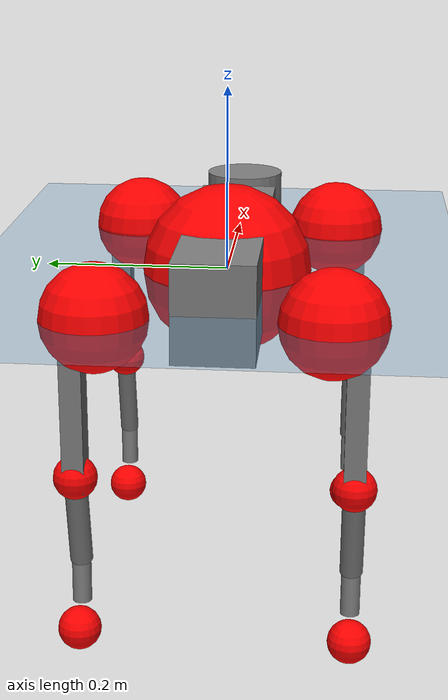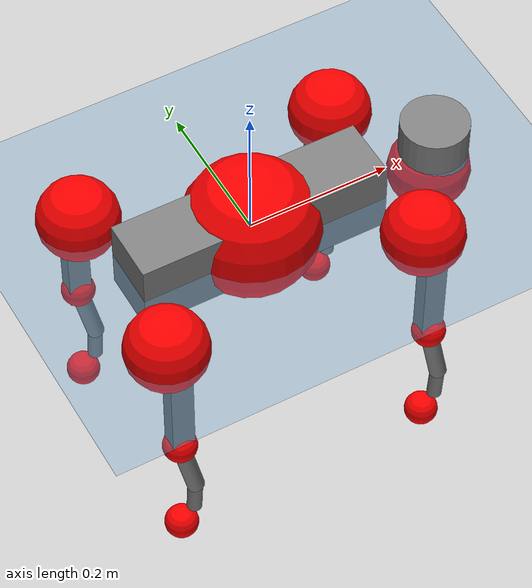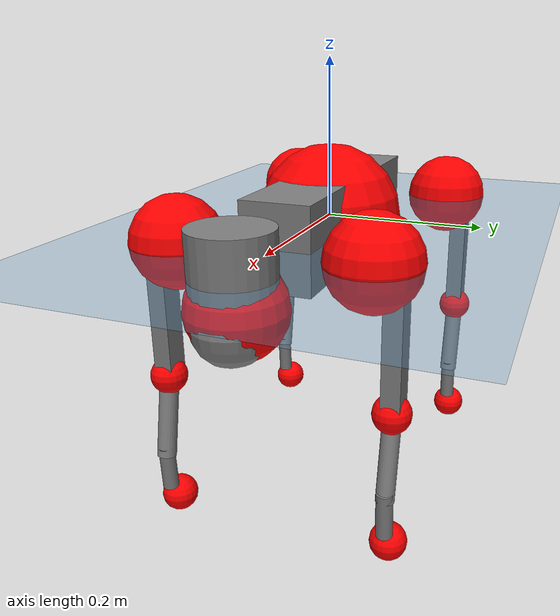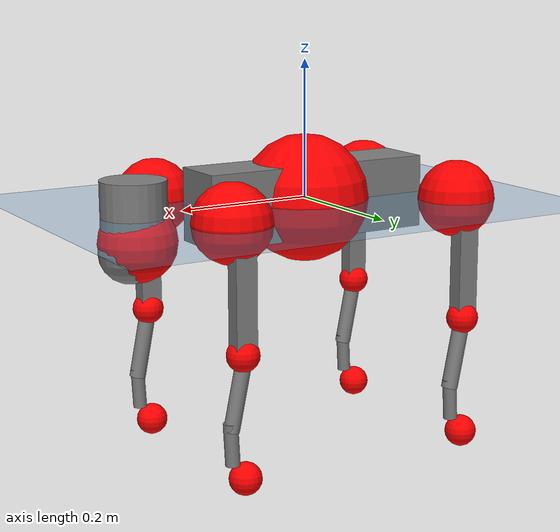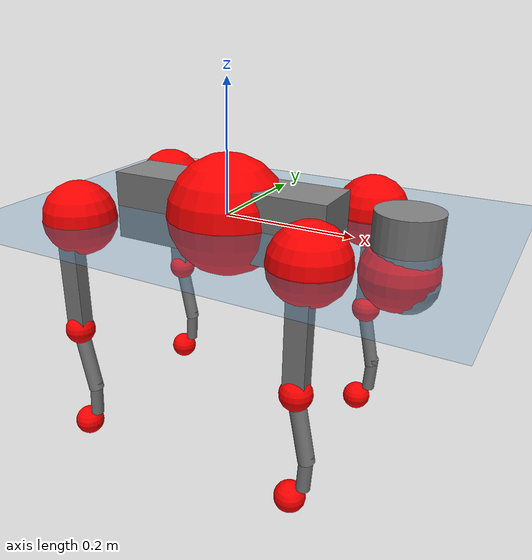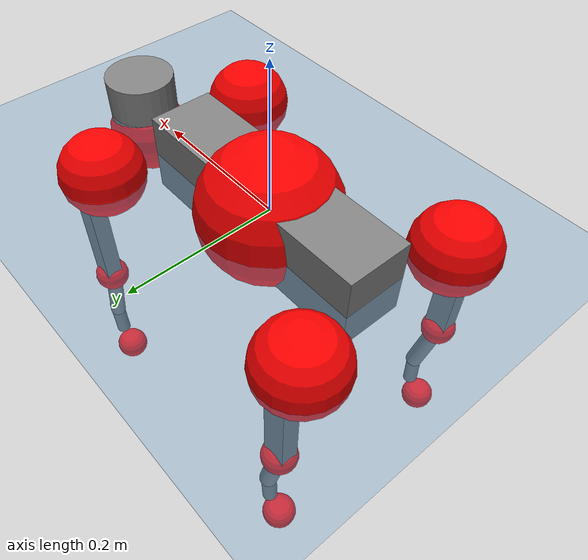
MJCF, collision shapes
<mujoco model="go2">
  <compiler angle="radian" assetdir="assets" balanceinertia="true" inertiafromgeom="false"/>

  <option timestep="0.005" density="1.2" viscosity="2e-05"/>

  <size nkey="1"/>

  <visual>
    <quality shadowsize="8192"/>
    <map shadowclip="0.5"/>
  </visual>

  <default>
    <default class="/">
      <geom contype="0" conaffinity="0" group="1" solref="-1000 -80"/>
      <site size="0.01 0.005 0.005" group="5"/>
      <general forcelimited="true" biastype="affine" gainprm="20" biasprm="0 -20 -0.5"/>
      <default class="go2">
        <joint armature="0.01" damping="0.01" frictionloss="0.2"/>
        <geom condim="1" margin="0.001"/>
        <default class="visual">
          <geom type="mesh" group="2"/>
        </default>
        <default class="collision">
          <geom group="3"/>
          <default class="foot">
            <geom size="0.022 0 0" condim="6" priority="1" friction="0.8 0.02 0.01" solimp="0.015 1 0.022"/>
          </default>
        </default>
        <default class="reward_collision_sphere">
          <geom group="5" rgba="1 0 0 1"/>
        </default>
      </default>
    </default>
  </default>

  <asset>
    <texture type="skybox" colorspace="auto" name="//unnamed_texture_0" builtin="gradient" rgb1="0.95 0.95 0.95" rgb2="0.95 0.95 0.95" width="100" height="600"/>
    <texture type="2d" colorspace="auto" name="texplane" builtin="checker" rgb1="0.345 0.575 0.748" rgb2="0.345 0.575 0.748" markrgb="1 1 1" width="512" height="512"/>
    <material name="MatPlane" class="/" texture="texplane" texuniform="true" texrepeat="2 2" specular="0.9"/>
    <material name="metal" class="/" rgba="0.9 0.95 0.95 1"/>
    <material name="black" class="/" rgba="0 0 0 1"/>
    <material name="white" class="/"/>
    <material name="gray" class="/" rgba="0.671705 0.692426 0.77427 1"/>
    <mesh name="base_0" class="/" file="base_0.obj"/>
    <mesh name="base_1" class="/" file="base_1.obj"/>
    <mesh name="base_2" class="/" file="base_2.obj"/>
    <mesh name="base_3" class="/" file="base_3.obj"/>
    <mesh name="base_4" class="/" file="base_4.obj"/>
    <mesh name="hip_0" class="/" file="hip_0.obj"/>
    <mesh name="hip_1" class="/" file="hip_1.obj"/>
    <mesh name="thigh_0" class="/" file="thigh_0.obj"/>
    <mesh name="thigh_1" class="/" file="thigh_1.obj"/>
    <mesh name="thigh_mirror_0" class="/" file="thigh_mirror_0.obj"/>
    <mesh name="thigh_mirror_1" class="/" file="thigh_mirror_1.obj"/>
    <mesh name="calf_0" class="/" file="calf_0.obj"/>
    <mesh name="calf_1" class="/" file="calf_1.obj"/>
    <mesh name="calf_mirror_0" class="/" file="calf_mirror_0.obj"/>
    <mesh name="calf_mirror_1" class="/" file="calf_mirror_1.obj"/>
    <mesh name="foot" class="/" file="foot.obj"/>
  </asset>

  <worldbody>
    <geom name="floor" class="/" size="100 100 0.125" type="plane" group="0" material="MatPlane"/>
    <light name="toplight_shadow" class="/" pos="0 0 5" dir="0.0990148 0.0990148 -0.990148" type="directional" ambient="0.04 0.04 0.04" diffuse="0.55 0.55 0.55" specular="0.12 0.12 0.12"/>
    <light name="toplight_fill" class="/" pos="0 0 5" dir="0.0990148 0.0990148 -0.990148" type="directional" castshadow="false" ambient="0.04 0.04 0.04" diffuse="0.3 0.3 0.3" specular="0.08 0.08 0.08"/>
    <body name="trunk" childclass="go2" pos="0.00036372 0.000118246 0.000223258" quat="1 0.000218437 -0.000119852 2.16537e-05">
      <inertial pos="0.0196906 -0.000919944 -0.00548031" quat="0.00298002 0.713949 -0.00016323 0.700191" mass="5.5064" diaginertia="0.0845898 0.106709 0.0092673"/>
      <joint name="//unnamed_joint_0" type="free" armature="0" damping="0" frictionloss="0"/>
      <geom name="//unnamed_geom_1" class="visual" material="black" mesh="base_0"/>
      <geom name="//unnamed_geom_2" class="visual" material="black" mesh="base_1"/>
      <geom name="//unnamed_geom_3" class="visual" material="black" mesh="base_2"/>
      <geom name="//unnamed_geom_4" class="visual" material="white" mesh="base_3"/>
      <geom name="//unnamed_geom_5" class="visual" material="gray" mesh="base_4"/>
      <geom name="trunk_1" class="collision" size="0.175109 0.0435213 0.0530634" type="box"/>
      <geom name="trunk_2" class="collision" size="0.0465469 0.0418922" pos="0.27208 0 0.00823038" type="cylinder"/>
      <geom name="trunk_3" class="collision" size="0.0437541" pos="0.279718 0 -0.0493823"/>
      <geom name="//unnamed_geom_9" class="reward_collision_sphere" size="0.0930937"/>
      <geom name="//unnamed_geom_10" class="reward_collision_sphere" size="0.0558562" pos="0.267307 0 -0.0370367"/>
      <site name="imu" pos="-0.0333032 -0.00262778 0.0396806" size="0.00930937"/>
      <camera name="track" pos="0 -2.03021 0" quat="0.707107 0.707107 0 0" mode="trackcom"/>
      <camera name="ego_camera" pos="0.297857 0 0.0370367" quat="-0.5 -0.5 0.5 0.5"/>
      <body name="FL_hip" pos="0.184984 0.0479513 0.00154201" quat="1 3.25533e-05 -0.000239151 0.000211519">
        <inertial pos="-0.00395806 0.00297389 -0.000437521" quat="0.4954 0.50086 0.507287 0.496366" mass="0.540501" diaginertia="0.000691299 0.000645102 0.000180279"/>
        <joint name="FL_hip_joint" pos="0 0 0" axis="0.999972 0.00516911 0.00534627" stiffness="0.000222947" range="-1.05497 1.03236" armature="0.0100132" damping="0.00123014" frictionloss="0.183014"/>
        <geom name="//unnamed_geom_11" class="visual" material="metal" mesh="hip_0"/>
        <geom name="//unnamed_geom_12" class="visual" material="gray" mesh="hip_1"/>
        <geom name="//unnamed_geom_13" class="collision" size="0.0428231 0.0186187" pos="0 0.0812085 0" quat="0.707107 0.707107 0 0" type="cylinder"/>
        <geom name="//unnamed_geom_14" class="reward_collision_sphere" size="0.0558562" pos="0 0.0710574 0"/>
        <body name="FL_thigh" pos="-0.000605697 0.0970822 0.00168716" quat="1 1.78816e-05 4.51172e-05 -8.36726e-05">
          <inertial pos="-0.00481523 -0.0224018 -0.0257113" quat="0.82889 0.0859467 -0.0189289 0.552445" mass="0.923178" diaginertia="0.00465212 0.00630041 0.00033072"/>
          <joint name="FL_thigh_joint" pos="0 0 0" axis="-0.000849616 1 0.000463192" range="-1.56528 3.48665" armature="0.00948992" damping="0.0119757" frictionloss="0.177035"/>
          <geom name="//unnamed_geom_15" class="visual" material="metal" mesh="thigh_0"/>
          <geom name="//unnamed_geom_16" class="visual" material="gray" mesh="thigh_1"/>
          <geom name="//unnamed_geom_17" class="collision" size="0.0991448 0.011404 0.0158259" pos="0 0 -0.0876535" quat="0.707107 0 0.707107 0" type="box"/>
          <body name="FL_calf" pos="-0.000431647 -0.00150237 -0.177147" quat="1 2.66182e-05 0.000102487 -9.28213e-05">
            <inertial pos="0.00629839 -0.000691643 -0.115423" quat="0.711428 0.0010493 -0.00485404 0.702741" mass="0.197361" diaginertia="0.00119313 0.00157497 2.02651e-05"/>
            <joint name="FL_calf_joint" pos="0 0 0" axis="-0.00321965 0.999953 -0.00913462" stiffness="0.00166933" range="-2.7166 -0.855573" armature="0.00884908" damping="0" frictionloss="0.181408"/>
            <geom name="//unnamed_geom_18" class="visual" material="gray" mesh="calf_0"/>
            <geom name="//unnamed_geom_19" class="visual" material="black" mesh="calf_1"/>
            <geom name="FL_calf0" class="collision" size="0.0111712 0.0558562" pos="0.00763735 0 -0.0493823" quat="0.994493 0 -0.104807 0" type="cylinder"/>
            <geom name="//unnamed_geom_21" class="collision" size="0.0102403 0.0302555" pos="0.0190934 0 -0.12181" quat="0.999688 0 0.0249974 0" type="cylinder"/>
            <geom name="//unnamed_geom_22" class="visual" pos="0 0 -0.175307" quat="1 0 0 0" material="black" mesh="foot"/>
            <geom name="FL_foot" class="foot" size="0.0180671" pos="-0.00190934 0 -0.175307"/>
            <geom name="//unnamed_geom_24" class="reward_collision_sphere" size="0.0232734"/>
            <geom name="//unnamed_geom_25" class="reward_collision_sphere" size="0.0232734" pos="-0.00190934 0 -0.175307"/>
            <site name="FL_foot" class="foot" pos="-0.00190934 0 -0.175307" size="0.00930937"/>
          </body>
        </body>
      </body>
      <body name="FR_hip" pos="0.185717 -0.0468329 0.000594554" quat="1 2.06527e-05 2.08594e-05 -1.37447e-05">
        <inertial pos="-0.00406775 -0.00235269 -1.10594e-05" quat="0.498538 0.504922 0.499065 0.497441" mass="0.544273" diaginertia="0.000704509 0.000631466 0.000179901"/>
        <joint name="FR_hip_joint" pos="0 0 0" axis="0.999987 0.0043174 -0.00254116" stiffness="0.00164046" range="-1.07159 1.05988" armature="0.00889701" damping="0.0184489" frictionloss="0.176778"/>
        <geom name="//unnamed_geom_26" class="visual" pos="0 1.67322e-09 7.17678e-08" quat="4.63268e-05 1 0 0" material="metal" mesh="hip_0"/>
        <geom name="//unnamed_geom_27" class="visual" pos="0 2.71249e-09 -1.77509e-07" quat="4.63268e-05 1 0 0" material="gray" mesh="hip_1"/>
        <geom name="//unnamed_geom_28" class="collision" size="0.0428231 0.0186187" pos="0 -0.0812085 0" quat="0.707107 0.707107 0 0" type="cylinder"/>
        <geom name="//unnamed_geom_29" class="reward_collision_sphere" size="0.0558562" pos="0 -0.0710574 0"/>
        <body name="FR_thigh" pos="0.00139526 -0.0954387 0.000488965" quat="1 0.000119892 -0.000157865 0.000191663">
          <inertial pos="-0.00368465 0.0232934 -0.0272081" quat="0.551204 -0.022258 0.0813352 0.830098" mass="0.91101" diaginertia="0.00473057 0.00624051 0.000327055"/>
          <joint name="FR_thigh_joint" pos="0 0 0" axis="-0.00249398 -0.999989 0.00385762" range="-3.4571 1.56378" armature="0.00931809" damping="0.005098" frictionloss="0.205417"/>
          <geom name="//unnamed_geom_30" class="visual" material="metal" mesh="thigh_mirror_0"/>
          <geom name="//unnamed_geom_31" class="visual" material="gray" mesh="thigh_mirror_1"/>
          <geom name="//unnamed_geom_32" class="collision" size="0.0991448 0.011404 0.0158259" pos="0 0 -0.0876535" quat="0.707107 0 0.707107 0" type="box"/>
          <body name="FR_calf" pos="0.000919904 -0.00163038 -0.175747" quat="1 1.33275e-06 -1.77417e-06 -1.43616e-07">
            <inertial pos="0.0057893 0.000871116 -0.115387" quat="0.704543 -0.00646326 0.00435715 0.709618" mass="0.193843" diaginertia="0.00115861 0.00157186 2.00901e-05"/>
            <joint name="FR_calf_joint" pos="0 0 0" axis="0.00110327 -0.999999 0.000380617" range="0.85035 2.71538" armature="0.0096215" damping="0.011514" frictionloss="0.171591"/>
            <geom name="//unnamed_geom_33" class="visual" material="gray" mesh="calf_mirror_0"/>
            <geom name="//unnamed_geom_34" class="visual" material="black" mesh="calf_mirror_1"/>
            <geom name="FR_calf0" class="collision" size="0.0121022 0.0558562" pos="0.00954668 0 -0.0493823" quat="0.995004 0 -0.0998334 0" type="cylinder"/>
            <geom name="//unnamed_geom_36" class="collision" size="0.0102403 0.0302555" pos="0.0190934 0 -0.12181" quat="0.999688 0 0.0249974 0" type="cylinder"/>
            <geom name="//unnamed_geom_37" class="visual" pos="0 0 -0.175307" quat="1 0 0 0" material="black" mesh="foot"/>
            <geom name="FR_foot" class="foot" size="0.020126" pos="-0.00190934 0 -0.175307"/>
            <geom name="//unnamed_geom_39" class="reward_collision_sphere" size="0.0232734"/>
            <geom name="//unnamed_geom_40" class="reward_collision_sphere" size="0.0232734" pos="-0.00190934 0 -0.175307"/>
            <site name="FR_foot" class="foot" pos="-0.00190934 0 -0.175307" size="0.00930937"/>
          </body>
        </body>
      </body>
      <body name="RL_hip" pos="-0.186376 0.046409 -0.000952151" quat="1 -4.7558e-06 2.11873e-06 -3.83378e-05">
        <inertial pos="0.00411795 0.00360784 0.000422595" quat="0.506618 0.495849 0.496536 0.500924" mass="0.542578" diaginertia="0.000701321 0.000649392 0.000177421"/>
        <joint name="RL_hip_joint" pos="0 0 0" axis="-0.999806 -0.00536822 0.0189573" stiffness="0.00291524" range="-1.06611 1.0052" armature="0.00875442" damping="0.011382" frictionloss="0.18835"/>
        <geom name="//unnamed_geom_41" class="visual" pos="-1.14671e-09 0 -2.24782e-07" quat="4.63268e-05 0 1 0" material="metal" mesh="hip_0"/>
        <geom name="//unnamed_geom_42" class="visual" pos="-1.85896e-09 0 -1.9935e-07" quat="4.63268e-05 0 1 0" material="gray" mesh="hip_1"/>
        <geom name="//unnamed_geom_43" class="collision" size="0.0428231 0.0186187" pos="0 0.0812085 0" quat="0.707107 0.707107 0 0" type="cylinder"/>
        <geom name="//unnamed_geom_44" class="reward_collision_sphere" size="0.0558562" pos="0 0.0710574 0"/>
        <body name="RL_thigh" pos="0.00051091 0.0944869 -0.000180049" quat="1 1.25657e-06 9.96916e-07 1.17382e-06">
          <inertial pos="-0.00351894 -0.0219027 -0.0274554" quat="0.830215 0.0847334 -0.0205634 0.550582" mass="0.92997" diaginertia="0.00471085 0.0063439 0.000329399"/>
          <joint name="RL_thigh_joint" pos="0 0 0" axis="0.00290289 0.999982 0.00520027" range="-0.525819 4.52823" armature="0.00974648" damping="0.00919421" frictionloss="0.17859"/>
          <geom name="//unnamed_geom_45" class="visual" material="metal" mesh="thigh_0"/>
          <geom name="//unnamed_geom_46" class="visual" material="gray" mesh="thigh_1"/>
          <geom name="//unnamed_geom_47" class="collision" size="0.0991448 0.011404 0.0158259" pos="0 0 -0.0876535" quat="0.707107 0 0.707107 0" type="box"/>
          <body name="RL_calf" pos="0.000873969 0.00041966 -0.17447" quat="1 -8.70062e-05 0.000534174 6.26355e-05">
            <inertial pos="0.00595314 -0.000410338 -0.116348" quat="0.713045 0.0100471 -0.00860324 0.700993" mass="0.195051" diaginertia="0.00118616 0.00159197 1.96658e-05"/>
            <joint name="RL_calf_joint" pos="0 0 0" axis="-0.0124066 0.999919 0.00283381" stiffness="0.00240122" range="-2.72553 -0.837077" armature="0.00922436" damping="0.00370393" frictionloss="0.182412"/>
            <geom name="//unnamed_geom_48" class="visual" material="gray" mesh="calf_0"/>
            <geom name="//unnamed_geom_49" class="visual" material="black" mesh="calf_1"/>
            <geom name="RL_calf0" class="collision" size="0.0121022 0.0558562" pos="0.00954668 0 -0.0493823" quat="0.995004 0 -0.0998334 0" type="cylinder"/>
            <geom name="//unnamed_geom_51" class="collision" size="0.0102403 0.0302555" pos="0.0190934 0 -0.12181" quat="0.999688 0 0.0249974 0" type="cylinder"/>
            <geom name="//unnamed_geom_52" class="visual" pos="0 0 -0.175307" quat="1 0 0 0" material="black" mesh="foot"/>
            <geom name="RL_foot" class="foot" size="0.0185606" pos="-0.00190934 0 -0.175307"/>
            <geom name="//unnamed_geom_54" class="reward_collision_sphere" size="0.0232734"/>
            <geom name="//unnamed_geom_55" class="reward_collision_sphere" size="0.0232734" pos="-0.00190934 0 -0.175307"/>
            <site name="RL_foot" class="foot" pos="-0.00190934 0 -0.175307" size="0.00930937"/>
          </body>
        </body>
      </body>
      <body name="RR_hip" pos="-0.184214 -0.0493775 -0.00100808" quat="1 -0.000100604 -0.00010226 0.00014072">
        <inertial pos="0.00375767 -0.00162852 0.000806435" quat="0.49987 0.495508 0.498294 0.506265" mass="0.553072" diaginertia="0.000711002 0.000650528 0.000179747"/>
        <joint name="RR_hip_joint" pos="0 0 0" axis="-1 -0.000136205 -0.000317228" stiffness="0.000999259" range="-1.05923 1.08212" armature="0.00914228" damping="0.00335235" frictionloss="0.187892"/>
        <geom name="//unnamed_geom_56" class="visual" pos="1.1488e-09 1.67322e-09 -2.9655e-07" quat="2.14617e-09 4.63268e-05 4.63268e-05 -1" material="metal" mesh="hip_0"/>
        <geom name="//unnamed_geom_57" class="visual" pos="1.85378e-09 2.71249e-09 -2.18404e-08" quat="2.14617e-09 4.63268e-05 4.63268e-05 -1" material="gray" mesh="hip_1"/>
        <geom name="//unnamed_geom_58" class="collision" size="0.0428231 0.0186187" pos="0 -0.0812085 0" quat="0.707107 0.707107 0 0" type="cylinder"/>
        <geom name="//unnamed_geom_59" class="reward_collision_sphere" size="0.0558562" pos="0 -0.0710574 0"/>
        <body name="RR_thigh" pos="0.000810527 -0.0966197 0.000273487" quat="1 1.08328e-05 8.36448e-06 -4.41057e-06">
          <inertial pos="-0.00361739 0.0226665 -0.0266342" quat="0.552016 -0.0200413 0.084707 0.829277" mass="0.88846" diaginertia="0.00456033 0.00612205 0.000324137"/>
          <joint name="RR_thigh_joint" pos="0 0 0" axis="-0.000754118 -0.99995 0.00994188" range="-4.54178 0.52693" armature="0.00975072" damping="0.0212057" frictionloss="0.188139"/>
          <geom name="//unnamed_geom_60" class="visual" material="metal" mesh="thigh_mirror_0"/>
          <geom name="//unnamed_geom_61" class="visual" material="gray" mesh="thigh_mirror_1"/>
          <geom name="//unnamed_geom_62" class="collision" size="0.0991448 0.011404 0.0158259" pos="0 0 -0.0876535" quat="0.707107 0 0.707107 0" type="box"/>
          <body name="RR_calf" pos="-0.000536035 -0.000256493 -0.17679" quat="1 0.000212209 -4.91106e-06 -0.00050837">
            <inertial pos="0.00680053 0.000670437 -0.11666" quat="0.705583 -0.00357217 0.000148923 0.708619" mass="0.196596" diaginertia="0.00119724 0.00159358 2.00691e-05"/>
            <joint name="RR_calf_joint" pos="0 0 0" axis="0.00331882 -0.999993 -0.00176634" range="0.828513 2.73653" armature="0.00857884" damping="0.004176" frictionloss="0.186377"/>
            <geom name="//unnamed_geom_63" class="visual" material="gray" mesh="calf_mirror_0"/>
            <geom name="//unnamed_geom_64" class="visual" material="black" mesh="calf_mirror_1"/>
            <geom name="RR_calf0" class="collision" size="0.0121022 0.0558562" pos="0.00954668 0 -0.0493823" quat="0.995004 0 -0.0998334 0" type="cylinder"/>
            <geom name="//unnamed_geom_66" class="collision" size="0.0102403 0.0302555" pos="0.0190934 0 -0.12181" quat="0.999688 0 0.0249974 0" type="cylinder"/>
            <geom name="//unnamed_geom_67" class="visual" pos="0 0 -0.175307" quat="1 0 0 0" material="black" mesh="foot"/>
            <geom name="RR_foot" class="foot" size="0.0219062" pos="-0.00190934 0 -0.175307"/>
            <geom name="//unnamed_geom_69" class="reward_collision_sphere" size="0.0232734"/>
            <geom name="//unnamed_geom_70" class="reward_collision_sphere" size="0.0232734" pos="-0.00190934 0 -0.175307"/>
            <site name="RR_foot" class="foot" pos="-0.00190934 0 -0.175307" size="0.00930937"/>
          </body>
        </body>
      </body>
    </body>
  </worldbody>

  <contact>
    <pair class="/" geom1="floor" geom2="FL_foot" name="//unnamed_contact_0"/>
    <pair class="/" geom1="floor" geom2="FR_foot" name="//unnamed_contact_1"/>
    <pair class="/" geom1="floor" geom2="RL_foot" name="//unnamed_contact_2"/>
    <pair class="/" geom1="floor" geom2="RR_foot" name="//unnamed_contact_3"/>
  </contact>

  <actuator>
    <general name="FL_hip" class="/" joint="FL_hip_joint" forcerange="-21.6636 21.6636" gainprm="18.7035" biasprm="0 -18.7035 -0.47305"/>
    <general name="FL_thigh" class="/" joint="FL_thigh_joint" forcerange="-22.7181 22.7181" gainprm="18.7035" biasprm="0 -18.7035 -0.47305"/>
    <general name="FL_calf" class="/" joint="FL_calf_joint" forcerange="-42.3728 42.3728" gainprm="18.7035" biasprm="0 -18.7035 -0.47305"/>
    <general name="FR_hip" class="/" joint="FR_hip_joint" forcerange="-22.5235 22.5235" gainprm="18.7035" biasprm="0 -18.7035 -0.47305"/>
    <general name="FR_thigh" class="/" joint="FR_thigh_joint" forcerange="-21.1999 21.1999" gainprm="18.7035" biasprm="0 -18.7035 -0.47305"/>
    <general name="FR_calf" class="/" joint="FR_calf_joint" forcerange="-40.681 40.681" gainprm="18.7035" biasprm="0 -18.7035 -0.47305"/>
    <general name="RL_hip" class="/" joint="RL_hip_joint" forcerange="-22.029 22.029" gainprm="18.7035" biasprm="0 -18.7035 -0.47305"/>
    <general name="RL_thigh" class="/" joint="RL_thigh_joint" forcerange="-21.2645 21.2645" gainprm="18.7035" biasprm="0 -18.7035 -0.47305"/>
    <general name="RL_calf" class="/" joint="RL_calf_joint" forcerange="-42.2695 42.2695" gainprm="18.7035" biasprm="0 -18.7035 -0.47305"/>
    <general name="RR_hip" class="/" joint="RR_hip_joint" forcerange="-22.7269 22.7269" gainprm="18.7035" biasprm="0 -18.7035 -0.47305"/>
    <general name="RR_thigh" class="/" joint="RR_thigh_joint" forcerange="-20.76 20.76" gainprm="18.7035" biasprm="0 -18.7035 -0.47305"/>
    <general name="RR_calf" class="/" joint="RR_calf_joint" forcerange="-43.7667 43.7667" gainprm="18.7035" biasprm="0 -18.7035 -0.47305"/>
  </actuator>

  <sensor>
    <gyro site="imu" name="imu_angular_velocity"/>
    <velocimeter site="imu" name="imu_linear_velocity"/>
    <framelinvel objtype="site" objname="FL_foot" name="FL_foot_global_linear_velocity"/>
    <framelinvel objtype="site" objname="FR_foot" name="FR_foot_global_linear_velocity"/>
    <framelinvel objtype="site" objname="RL_foot" name="RL_foot_global_linear_velocity"/>
    <framelinvel objtype="site" objname="RR_foot" name="RR_foot_global_linear_velocity"/>
  </sensor>

  <keyframe>
    <key name="home" qpos="0 0 0.325 1 0 0 0 0.1 0.8 -1.5 -0.1 -0.8 1.5 -0.1 0.8 -1.5 0.1 -0.8 1.5"/>
  </keyframe>
</mujoco>
